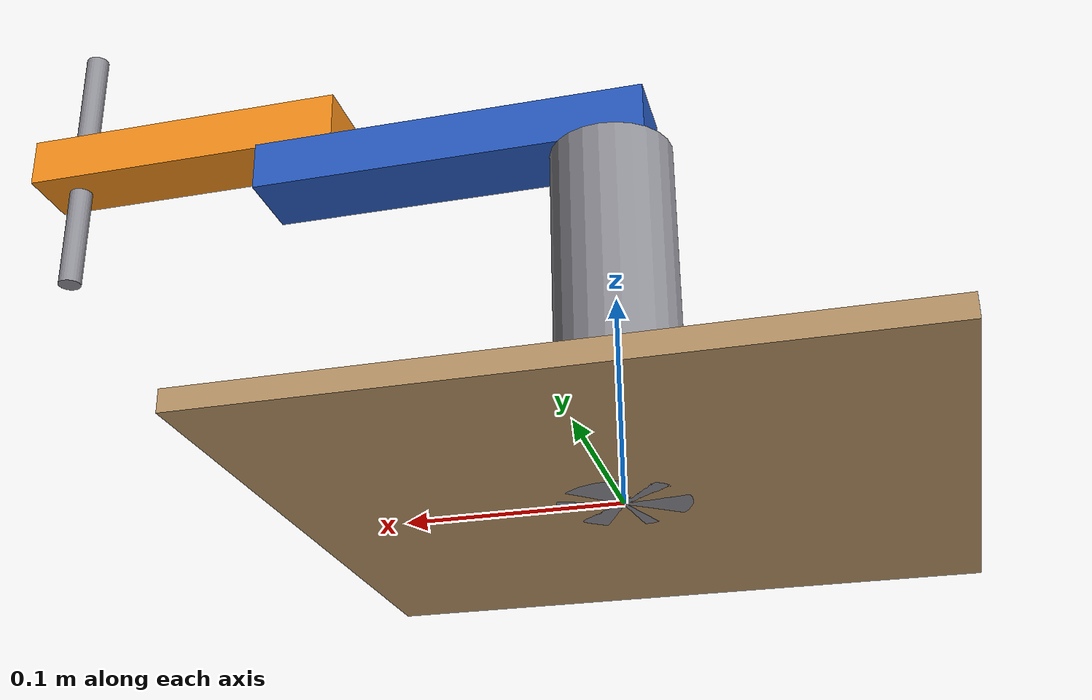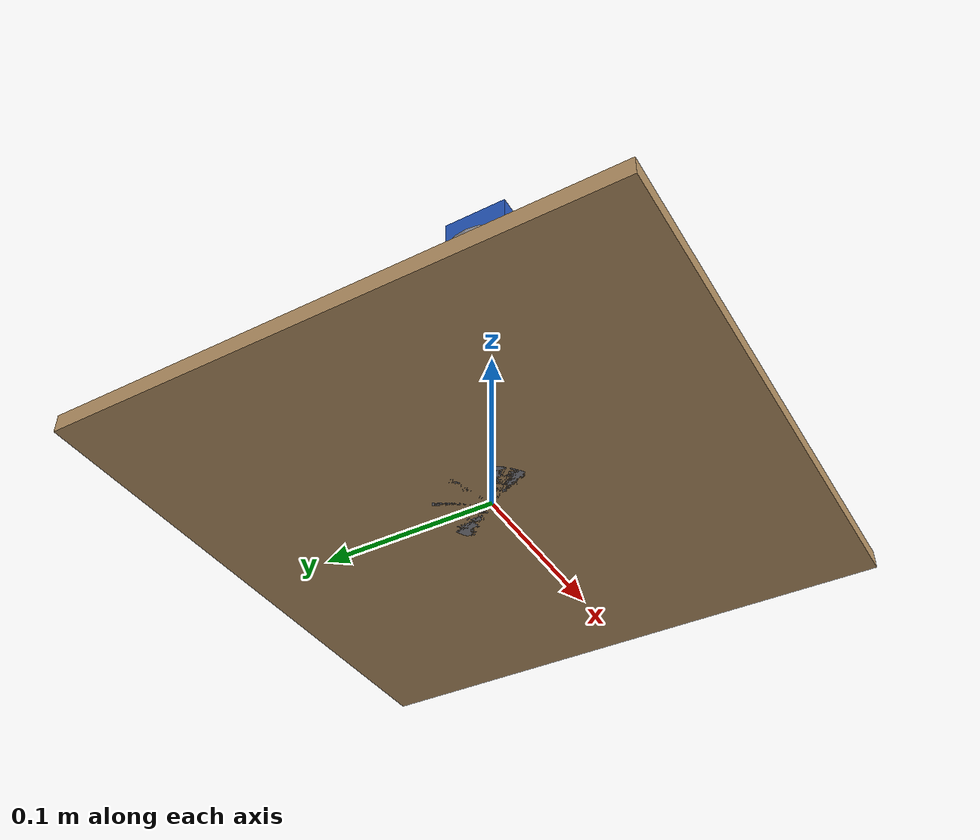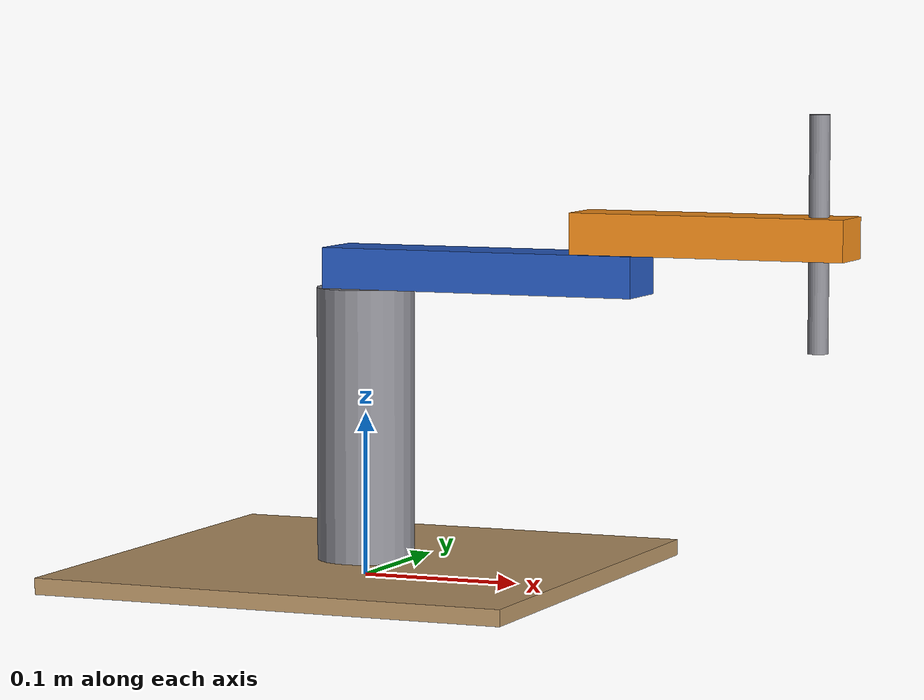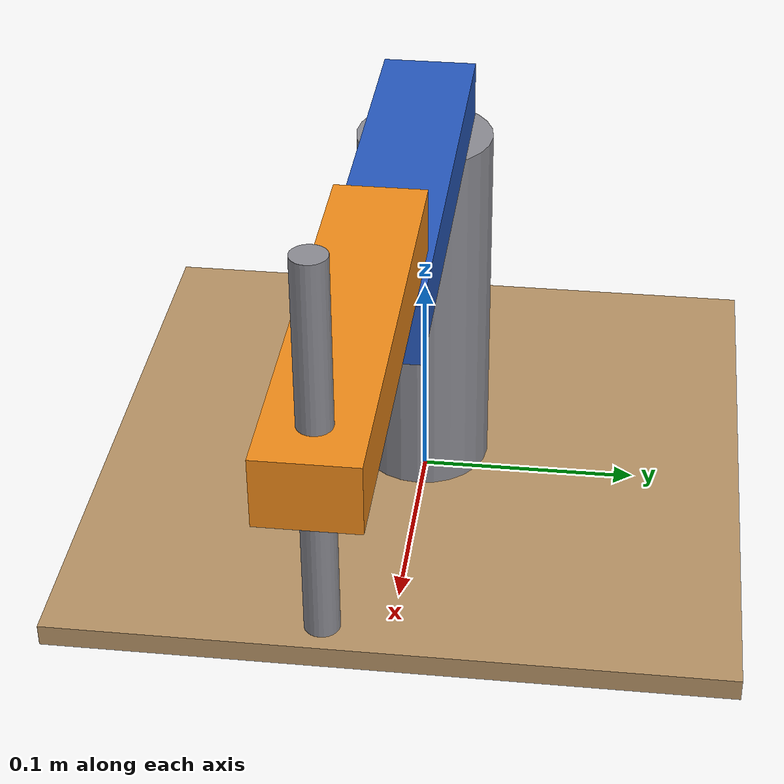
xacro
<?xml version="1.0"?>
<robot xmlns:xacro="http://www.ros.org/wiki/xacro" name="scara_st7">

  <xacro:property name="r1" value="0.160"/>
  <xacro:property name="r2" value="0.130"/>
  <xacro:property name="h" value="0.178"/>
  <!-- Carrera de Z: TODO CONFIRMAR con el montaje real -->
  <xacro:property name="z_stroke" value="0.120"/>
  <!-- Límites articulares del CAD: θ1 ±90°, θ2 ±140° -->
  <xacro:property name="th1_lim" value="${radians(90)}"/>
  <xacro:property name="th2_lim" value="${radians(140)}"/>

  <material name="gris"><color rgba="0.55 0.55 0.58 1"/></material>
  <material name="azul"><color rgba="0.15 0.35 0.75 1"/></material>
  <material name="naranja"><color rgba="0.95 0.55 0.10 1"/></material>
  <material name="madera"><color rgba="0.72 0.58 0.40 1"/></material>

  <link name="world"/>

  <!-- Base MDF + columna fija hasta la altura del brazo -->
  <link name="base_link">
    <visual>
      <origin xyz="0 0 0.005"/>
      <geometry><box size="0.30 0.30 0.01"/></geometry>
      <material name="madera"/>
    </visual>
    <visual>
      <origin xyz="0 0 ${h / 2}"/>
      <geometry><cylinder radius="0.03" length="${h}"/></geometry>
      <material name="gris"/>
    </visual>
  </link>
  <joint name="world_to_base" type="fixed">
    <parent link="world"/>
    <child link="base_link"/>
  </joint>

  <!-- θ1: hombro, eje z, a la altura h -->
  <link name="link1">
    <visual>
      <origin xyz="${r1 / 2} 0 0.0125"/>
      <geometry><box size="${r1 + 0.04} 0.04 0.025"/></geometry>
      <material name="azul"/>
    </visual>
  </link>
  <joint name="joint1" type="revolute">
    <parent link="base_link"/>
    <child link="link1"/>
    <origin xyz="0 0 ${h}"/>
    <axis xyz="0 0 1"/>
    <limit lower="${-th1_lim}" upper="${th1_lim}" effort="5" velocity="1.0"/>
  </joint>

  <!-- θ2: codo, a r1 del hombro -->
  <link name="link2">
    <visual>
      <origin xyz="${r2 / 2} 0 0.0375"/>
      <geometry><box size="${r2 + 0.04} 0.035 0.025"/></geometry>
      <material name="naranja"/>
    </visual>
  </link>
  <joint name="joint2" type="revolute">
    <parent link="link1"/>
    <child link="link2"/>
    <origin xyz="${r1} 0 0"/>
    <axis xyz="0 0 1"/>
    <limit lower="${-th2_lim}" upper="${th2_lim}" effort="5" velocity="1.0"/>
  </joint>

  <!-- s3: eje Z prismático a r2 del codo; s3 > 0 baja la herramienta (z = h − s3) -->
  <link name="link3">
    <visual>
      <origin xyz="0 0 0.04"/>
      <geometry><cylinder radius="0.006" length="0.14"/></geometry>
      <material name="gris"/>
    </visual>
  </link>
  <joint name="joint3" type="prismatic">
    <parent link="link2"/>
    <child link="link3"/>
    <origin xyz="${r2} 0 0"/>
    <axis xyz="0 0 -1"/>
    <limit lower="0.0" upper="${z_stroke}" effort="20" velocity="0.01"/>
  </joint>

  <!-- Punto de la herramienta (TCP) en la punta del eje Z -->
  <link name="tool0"/>
  <joint name="tool_joint" type="fixed">
    <parent link="link3"/>
    <child link="tool0"/>
    <origin xyz="0 0 0"/>
  </joint>

</robot>
